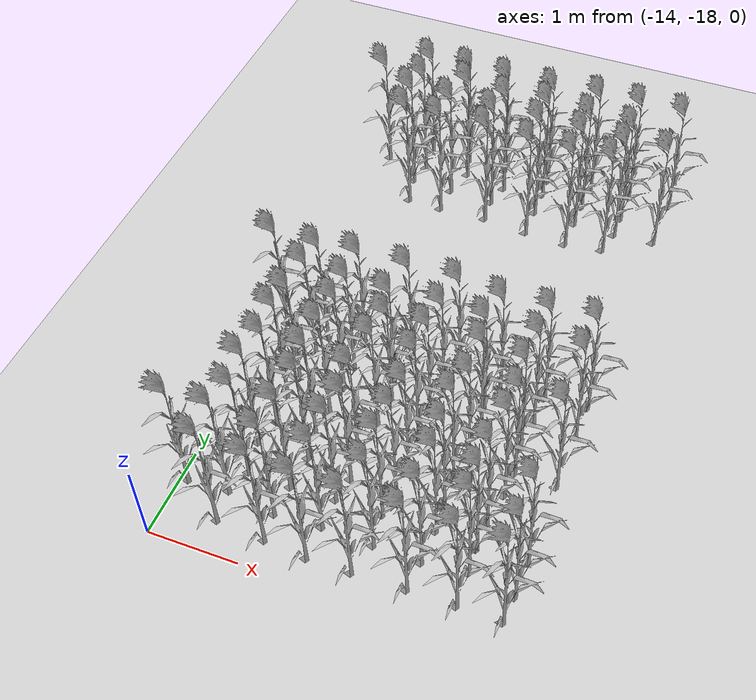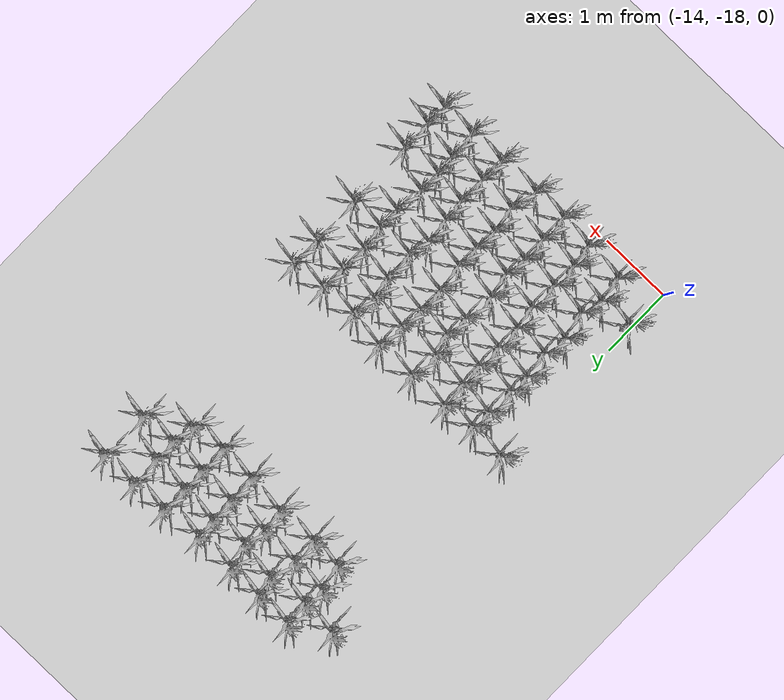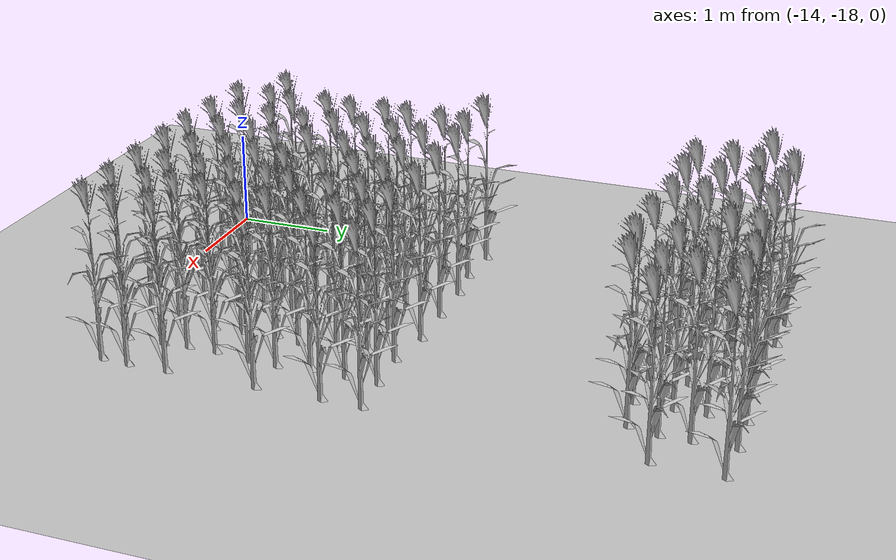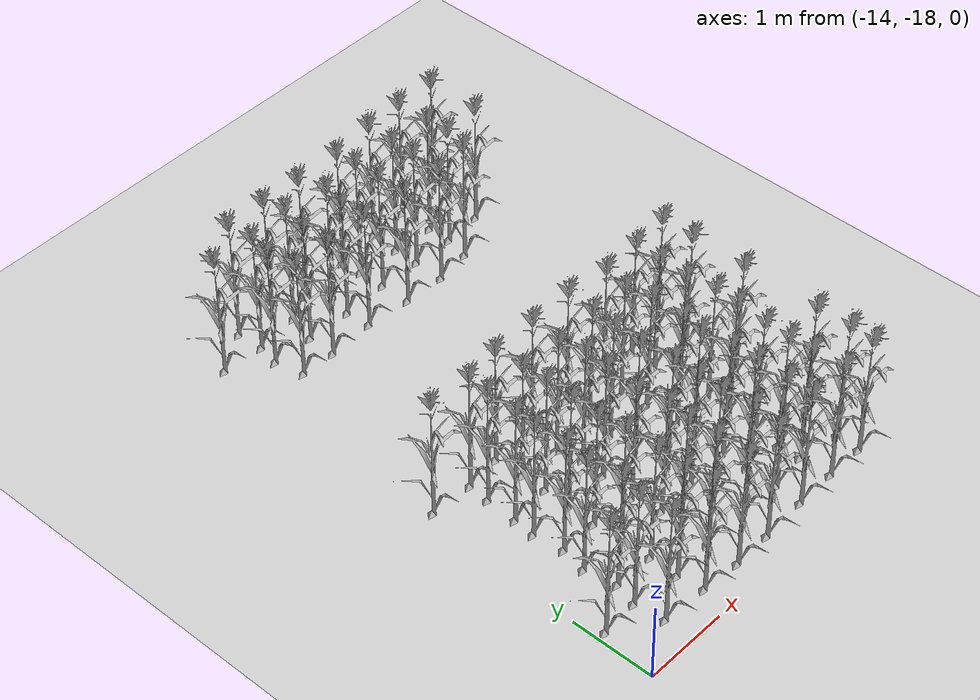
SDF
<sdf version="1.7">
 <world name="farmland_world">
  <model name="ground_plane">
   <static>1</static>
   <link name="link">
    <collision name="collision">
     <geometry><plane><normal>0 0 1</normal><size>40.0 40.0</size></plane></geometry>
     <surface><friction><ode><mu>100</mu><mu2>50</mu2></ode></friction></surface>
    </collision>
    <visual name="visual">
     <cast_shadows>0</cast_shadows>
     <geometry><plane><normal>0 0 1</normal><size>40.0 40.0</size></plane></geometry>
     <material>
      <script><uri>file://media/materials/scripts/gazebo.material</uri><name>Gazebo/Grey</name></script>
     </material>
    </visual>
   </link>
  </model>
  <model name="tree_3_1625">
   <static>1</static>
   <link name="link">
    <collision name="collision">
     <geometry><mesh><uri>model://Corn_low_poly/corn.obj</uri><scale>1 1 1</scale></mesh></geometry>
     <surface><friction><ode><mu>100</mu><mu2>50</mu2></ode></friction></surface>
    </collision>
    <visual name="visual">
     <geometry><mesh><uri>model://Corn_low_poly/corn.obj</uri><scale>1 1 1</scale></mesh></geometry>
    </visual>
   </link>
   <pose>-10.322011415505049 -16.96568933861205 0 0 0 0</pose>
  </model>
  <model name="tree_3_1626">
   <static>1</static>
   <link name="link">
    <collision name="collision">
     <geometry><mesh><uri>model://Corn_low_poly/corn.obj</uri><scale>1 1 1</scale></mesh></geometry>
     <surface><friction><ode><mu>100</mu><mu2>50</mu2></ode></friction></surface>
    </collision>
    <visual name="visual">
     <geometry><mesh><uri>model://Corn_low_poly/corn.obj</uri><scale>1 1 1</scale></mesh></geometry>
    </visual>
   </link>
   <pose>-10.842135627517585 -17.018692686762034 0 0 0 0</pose>
  </model>
  <model name="tree_3_1627">
   <static>1</static>
   <link name="link">
    <collision name="collision">
     <geometry><mesh><uri>model://Corn_low_poly/corn.obj</uri><scale>1 1 1</scale></mesh></geometry>
     <surface><friction><ode><mu>100</mu><mu2>50</mu2></ode></friction></surface>
    </collision>
    <visual name="visual">
     <geometry><mesh><uri>model://Corn_low_poly/corn.obj</uri><scale>1 1 1</scale></mesh></geometry>
    </visual>
   </link>
   <pose>-11.290646881428671 -16.969747699270048 0 0 0 0</pose>
  </model>
  <model name="tree_3_1628">
   <static>1</static>
   <link name="link">
    <collision name="collision">
     <geometry><mesh><uri>model://Corn_low_poly/corn.obj</uri><scale>1 1 1</scale></mesh></geometry>
     <surface><friction><ode><mu>100</mu><mu2>50</mu2></ode></friction></surface>
    </collision>
    <visual name="visual">
     <geometry><mesh><uri>model://Corn_low_poly/corn.obj</uri><scale>1 1 1</scale></mesh></geometry>
    </visual>
   </link>
   <pose>-11.86096429197292 -16.98734226414544 0 0 0 0</pose>
  </model>
  <model name="tree_3_1629">
   <static>1</static>
   <link name="link">
    <collision name="collision">
     <geometry><mesh><uri>model://Corn_low_poly/corn.obj</uri><scale>1 1 1</scale></mesh></geometry>
     <surface><friction><ode><mu>100</mu><mu2>50</mu2></ode></friction></surface>
    </collision>
    <visual name="visual">
     <geometry><mesh><uri>model://Corn_low_poly/corn.obj</uri><scale>1 1 1</scale></mesh></geometry>
    </visual>
   </link>
   <pose>-12.371772038073647 -16.99086698541932 0 0 0 0</pose>
  </model>
  <model name="tree_3_1630">
   <static>1</static>
   <link name="link">
    <collision name="collision">
     <geometry><mesh><uri>model://Corn_low_poly/corn.obj</uri><scale>1 1 1</scale></mesh></geometry>
     <surface><friction><ode><mu>100</mu><mu2>50</mu2></ode></friction></surface>
    </collision>
    <visual name="visual">
     <geometry><mesh><uri>model://Corn_low_poly/corn.obj</uri><scale>1 1 1</scale></mesh></geometry>
    </visual>
   </link>
   <pose>-12.870509823784332 -17.016537101468895 0 0 0 0</pose>
  </model>
  <model name="tree_3_1631">
   <static>1</static>
   <link name="link">
    <collision name="collision">
     <geometry><mesh><uri>model://Corn_low_poly/corn.obj</uri><scale>1 1 1</scale></mesh></geometry>
     <surface><friction><ode><mu>100</mu><mu2>50</mu2></ode></friction></surface>
    </collision>
    <visual name="visual">
     <geometry><mesh><uri>model://Corn_low_poly/corn.obj</uri><scale>1 1 1</scale></mesh></geometry>
    </visual>
   </link>
   <pose>-13.349775996649312 -17.005158203549183 0 0 0 0</pose>
  </model>
  <model name="tree_3_1659">
   <static>1</static>
   <link name="link">
    <collision name="collision">
     <geometry><mesh><uri>model://Corn_low_poly/corn.obj</uri><scale>1 1 1</scale></mesh></geometry>
     <surface><friction><ode><mu>100</mu><mu2>50</mu2></ode></friction></surface>
    </collision>
    <visual name="visual">
     <geometry><mesh><uri>model://Corn_low_poly/corn.obj</uri><scale>1 1 1</scale></mesh></geometry>
    </visual>
   </link>
   <pose>-10.315257468479299 -17.377820123046885 0 0 0 0</pose>
  </model>
  <model name="tree_3_1660">
   <static>1</static>
   <link name="link">
    <collision name="collision">
     <geometry><mesh><uri>model://Corn_low_poly/corn.obj</uri><scale>1 1 1</scale></mesh></geometry>
     <surface><friction><ode><mu>100</mu><mu2>50</mu2></ode></friction></surface>
    </collision>
    <visual name="visual">
     <geometry><mesh><uri>model://Corn_low_poly/corn.obj</uri><scale>1 1 1</scale></mesh></geometry>
    </visual>
   </link>
   <pose>-10.820619841156141 -17.288895621762975 0 0 0 0</pose>
  </model>
  <model name="tree_3_1661">
   <static>1</static>
   <link name="link">
    <collision name="collision">
     <geometry><mesh><uri>model://Corn_low_poly/corn.obj</uri><scale>1 1 1</scale></mesh></geometry>
     <surface><friction><ode><mu>100</mu><mu2>50</mu2></ode></friction></surface>
    </collision>
    <visual name="visual">
     <geometry><mesh><uri>model://Corn_low_poly/corn.obj</uri><scale>1 1 1</scale></mesh></geometry>
    </visual>
   </link>
   <pose>-11.293102599494727 -17.350891817546934 0 0 0 0</pose>
  </model>
  <model name="tree_3_1662">
   <static>1</static>
   <link name="link">
    <collision name="collision">
     <geometry><mesh><uri>model://Corn_low_poly/corn.obj</uri><scale>1 1 1</scale></mesh></geometry>
     <surface><friction><ode><mu>100</mu><mu2>50</mu2></ode></friction></surface>
    </collision>
    <visual name="visual">
     <geometry><mesh><uri>model://Corn_low_poly/corn.obj</uri><scale>1 1 1</scale></mesh></geometry>
    </visual>
   </link>
   <pose>-11.806453321441587 -17.34190639265092 0 0 0 0</pose>
  </model>
  <model name="tree_3_1663">
   <static>1</static>
   <link name="link">
    <collision name="collision">
     <geometry><mesh><uri>model://Corn_low_poly/corn.obj</uri><scale>1 1 1</scale></mesh></geometry>
     <surface><friction><ode><mu>100</mu><mu2>50</mu2></ode></friction></surface>
    </collision>
    <visual name="visual">
     <geometry><mesh><uri>model://Corn_low_poly/corn.obj</uri><scale>1 1 1</scale></mesh></geometry>
    </visual>
   </link>
   <pose>-12.365698626078954 -17.331936437820215 0 0 0 0</pose>
  </model>
  <model name="tree_3_1664">
   <static>1</static>
   <link name="link">
    <collision name="collision">
     <geometry><mesh><uri>model://Corn_low_poly/corn.obj</uri><scale>1 1 1</scale></mesh></geometry>
     <surface><friction><ode><mu>100</mu><mu2>50</mu2></ode></friction></surface>
    </collision>
    <visual name="visual">
     <geometry><mesh><uri>model://Corn_low_poly/corn.obj</uri><scale>1 1 1</scale></mesh></geometry>
    </visual>
   </link>
   <pose>-12.879094139196653 -17.366878622829972 0 0 0 0</pose>
  </model>
  <model name="tree_3_1665">
   <static>1</static>
   <link name="link">
    <collision name="collision">
     <geometry><mesh><uri>model://Corn_low_poly/corn.obj</uri><scale>1 1 1</scale></mesh></geometry>
     <surface><friction><ode><mu>100</mu><mu2>50</mu2></ode></friction></surface>
    </collision>
    <visual name="visual">
     <geometry><mesh><uri>model://Corn_low_poly/corn.obj</uri><scale>1 1 1</scale></mesh></geometry>
    </visual>
   </link>
   <pose>-13.432110290110971 -17.282504128516585 0 0 0 0</pose>
  </model>
  <model name="tree_3_1666">
   <static>1</static>
   <link name="link">
    <collision name="collision">
     <geometry><mesh><uri>model://Corn_low_poly/corn.obj</uri><scale>1 1 1</scale></mesh></geometry>
     <surface><friction><ode><mu>100</mu><mu2>50</mu2></ode></friction></surface>
    </collision>
    <visual name="visual">
     <geometry><mesh><uri>model://Corn_low_poly/corn.obj</uri><scale>1 1 1</scale></mesh></geometry>
    </visual>
   </link>
   <pose>-13.885906942692195 -17.312323157497772 0 0 0 0</pose>
  </model>
  <model name="tree_3_1693">
   <static>1</static>
   <link name="link">
    <collision name="collision">
     <geometry><mesh><uri>model://Corn_low_poly/corn.obj</uri><scale>1 1 1</scale></mesh></geometry>
     <surface><friction><ode><mu>100</mu><mu2>50</mu2></ode></friction></surface>
    </collision>
    <visual name="visual">
     <geometry><mesh><uri>model://Corn_low_poly/corn.obj</uri><scale>1 1 1</scale></mesh></geometry>
    </visual>
   </link>
   <pose>-10.332931129647491 -17.66784356011107 0 0 0 0</pose>
  </model>
  <model name="tree_3_1694">
   <static>1</static>
   <link name="link">
    <collision name="collision">
     <geometry><mesh><uri>model://Corn_low_poly/corn.obj</uri><scale>1 1 1</scale></mesh></geometry>
     <surface><friction><ode><mu>100</mu><mu2>50</mu2></ode></friction></surface>
    </collision>
    <visual name="visual">
     <geometry><mesh><uri>model://Corn_low_poly/corn.obj</uri><scale>1 1 1</scale></mesh></geometry>
    </visual>
   </link>
   <pose>-10.80451852717293 -17.66579896300065 0 0 0 0</pose>
  </model>
  <model name="tree_3_1695">
   <static>1</static>
   <link name="link">
    <collision name="collision">
     <geometry><mesh><uri>model://Corn_low_poly/corn.obj</uri><scale>1 1 1</scale></mesh></geometry>
     <surface><friction><ode><mu>100</mu><mu2>50</mu2></ode></friction></surface>
    </collision>
    <visual name="visual">
     <geometry><mesh><uri>model://Corn_low_poly/corn.obj</uri><scale>1 1 1</scale></mesh></geometry>
    </visual>
   </link>
   <pose>-11.313506369322727 -17.67508700233101 0 0 0 0</pose>
  </model>
  <model name="tree_3_1696">
   <static>1</static>
   <link name="link">
    <collision name="collision">
     <geometry><mesh><uri>model://Corn_low_poly/corn.obj</uri><scale>1 1 1</scale></mesh></geometry>
     <surface><friction><ode><mu>100</mu><mu2>50</mu2></ode></friction></surface>
    </collision>
    <visual name="visual">
     <geometry><mesh><uri>model://Corn_low_poly/corn.obj</uri><scale>1 1 1</scale></mesh></geometry>
    </visual>
   </link>
   <pose>-11.8869502086524 -17.698814834555076 0 0 0 0</pose>
  </model>
  <model name="tree_3_1697">
   <static>1</static>
   <link name="link">
    <collision name="collision">
     <geometry><mesh><uri>model://Corn_low_poly/corn.obj</uri><scale>1 1 1</scale></mesh></geometry>
     <surface><friction><ode><mu>100</mu><mu2>50</mu2></ode></friction></surface>
    </collision>
    <visual name="visual">
     <geometry><mesh><uri>model://Corn_low_poly/corn.obj</uri><scale>1 1 1</scale></mesh></geometry>
    </visual>
   </link>
   <pose>-12.362437709574875 -17.709618679390733 0 0 0 0</pose>
  </model>
  <model name="tree_3_1698">
   <static>1</static>
   <link name="link">
    <collision name="collision">
     <geometry><mesh><uri>model://Corn_low_poly/corn.obj</uri><scale>1 1 1</scale></mesh></geometry>
     <surface><friction><ode><mu>100</mu><mu2>50</mu2></ode></friction></surface>
    </collision>
    <visual name="visual">
     <geometry><mesh><uri>model://Corn_low_poly/corn.obj</uri><scale>1 1 1</scale></mesh></geometry>
    </visual>
   </link>
   <pose>-12.835643460431635 -17.67360087109452 0 0 0 0</pose>
  </model>
  <model name="tree_3_1699">
   <static>1</static>
   <link name="link">
    <collision name="collision">
     <geometry><mesh><uri>model://Corn_low_poly/corn.obj</uri><scale>1 1 1</scale></mesh></geometry>
     <surface><friction><ode><mu>100</mu><mu2>50</mu2></ode></friction></surface>
    </collision>
    <visual name="visual">
     <geometry><mesh><uri>model://Corn_low_poly/corn.obj</uri><scale>1 1 1</scale></mesh></geometry>
    </visual>
   </link>
   <pose>-13.381822307875591 -17.63662740836473 0 0 0 0</pose>
  </model>
  <model name="tree_3_1727">
   <static>1</static>
   <link name="link">
    <collision name="collision">
     <geometry><mesh><uri>model://Corn_low_poly/corn.obj</uri><scale>1 1 1</scale></mesh></geometry>
     <surface><friction><ode><mu>100</mu><mu2>50</mu2></ode></friction></surface>
    </collision>
    <visual name="visual">
     <geometry><mesh><uri>model://Corn_low_poly/corn.obj</uri><scale>1 1 1</scale></mesh></geometry>
    </visual>
   </link>
   <pose>-10.32863697440302 -16.042846220636665 0 0 0 0</pose>
  </model>
  <model name="tree_3_1728">
   <static>1</static>
   <link name="link">
    <collision name="collision">
     <geometry><mesh><uri>model://Corn_low_poly/corn.obj</uri><scale>1 1 1</scale></mesh></geometry>
     <surface><friction><ode><mu>100</mu><mu2>50</mu2></ode></friction></surface>
    </collision>
    <visual name="visual">
     <geometry><mesh><uri>model://Corn_low_poly/corn.obj</uri><scale>1 1 1</scale></mesh></geometry>
    </visual>
   </link>
   <pose>-10.782997873386412 -16.03975368784904 0 0 0 0</pose>
  </model>
  <model name="tree_3_1729">
   <static>1</static>
   <link name="link">
    <collision name="collision">
     <geometry><mesh><uri>model://Corn_low_poly/corn.obj</uri><scale>1 1 1</scale></mesh></geometry>
     <surface><friction><ode><mu>100</mu><mu2>50</mu2></ode></friction></surface>
    </collision>
    <visual name="visual">
     <geometry><mesh><uri>model://Corn_low_poly/corn.obj</uri><scale>1 1 1</scale></mesh></geometry>
    </visual>
   </link>
   <pose>-11.28973079513066 -16.043073047324327 0 0 0 0</pose>
  </model>
  <model name="tree_3_1730">
   <static>1</static>
   <link name="link">
    <collision name="collision">
     <geometry><mesh><uri>model://Corn_low_poly/corn.obj</uri><scale>1 1 1</scale></mesh></geometry>
     <surface><friction><ode><mu>100</mu><mu2>50</mu2></ode></friction></surface>
    </collision>
    <visual name="visual">
     <geometry><mesh><uri>model://Corn_low_poly/corn.obj</uri><scale>1 1 1</scale></mesh></geometry>
    </visual>
   </link>
   <pose>-11.884038874183815 -15.978514121935047 0 0 0 0</pose>
  </model>
  <model name="tree_3_1731">
   <static>1</static>
   <link name="link">
    <collision name="collision">
     <geometry><mesh><uri>model://Corn_low_poly/corn.obj</uri><scale>1 1 1</scale></mesh></geometry>
     <surface><friction><ode><mu>100</mu><mu2>50</mu2></ode></friction></surface>
    </collision>
    <visual name="visual">
     <geometry><mesh><uri>model://Corn_low_poly/corn.obj</uri><scale>1 1 1</scale></mesh></geometry>
    </visual>
   </link>
   <pose>-12.356034591509463 -15.951033616201336 0 0 0 0</pose>
  </model>
  <model name="tree_3_1732">
   <static>1</static>
   <link name="link">
    <collision name="collision">
     <geometry><mesh><uri>model://Corn_low_poly/corn.obj</uri><scale>1 1 1</scale></mesh></geometry>
     <surface><friction><ode><mu>100</mu><mu2>50</mu2></ode></friction></surface>
    </collision>
    <visual name="visual">
     <geometry><mesh><uri>model://Corn_low_poly/corn.obj</uri><scale>1 1 1</scale></mesh></geometry>
    </visual>
   </link>
   <pose>-12.907812554135003 -15.97689568240053 0 0 0 0</pose>
  </model>
  <model name="tree_3_1733">
   <static>1</static>
   <link name="link">
    <collision name="collision">
     <geometry><mesh><uri>model://Corn_low_poly/corn.obj</uri><scale>1 1 1</scale></mesh></geometry>
     <surface><friction><ode><mu>100</mu><mu2>50</mu2></ode></friction></surface>
    </collision>
    <visual name="visual">
     <geometry><mesh><uri>model://Corn_low_poly/corn.obj</uri><scale>1 1 1</scale></mesh></geometry>
    </visual>
   </link>
   <pose>-13.418192521420227 -15.959471024206188 0 0 0 0</pose>
  </model>
  <model name="tree_3_1762">
   <static>1</static>
   <link name="link">
    <collision name="collision">
     <geometry><mesh><uri>model://Corn_low_poly/corn.obj</uri><scale>1 1 1</scale></mesh></geometry>
     <surface><friction><ode><mu>100</mu><mu2>50</mu2></ode></friction></surface>
    </collision>
    <visual name="visual">
     <geometry><mesh><uri>model://Corn_low_poly/corn.obj</uri><scale>1 1 1</scale></mesh></geometry>
    </visual>
   </link>
   <pose>-10.792988321659148 -16.332740251845138 0 0 0 0</pose>
  </model>
  <model name="tree_3_1763">
   <static>1</static>
   <link name="link">
    <collision name="collision">
     <geometry><mesh><uri>model://Corn_low_poly/corn.obj</uri><scale>1 1 1</scale></mesh></geometry>
     <surface><friction><ode><mu>100</mu><mu2>50</mu2></ode></friction></surface>
    </collision>
    <visual name="visual">
     <geometry><mesh><uri>model://Corn_low_poly/corn.obj</uri><scale>1 1 1</scale></mesh></geometry>
    </visual>
   </link>
   <pose>-11.35822728923162 -16.315390905874644 0 0 0 0</pose>
  </model>
  <model name="tree_3_1764">
   <static>1</static>
   <link name="link">
    <collision name="collision">
     <geometry><mesh><uri>model://Corn_low_poly/corn.obj</uri><scale>1 1 1</scale></mesh></geometry>
     <surface><friction><ode><mu>100</mu><mu2>50</mu2></ode></friction></surface>
    </collision>
    <visual name="visual">
     <geometry><mesh><uri>model://Corn_low_poly/corn.obj</uri><scale>1 1 1</scale></mesh></geometry>
    </visual>
   </link>
   <pose>-11.833212871269229 -16.367110099079515 0 0 0 0</pose>
  </model>
  <model name="tree_3_1765">
   <static>1</static>
   <link name="link">
    <collision name="collision">
     <geometry><mesh><uri>model://Corn_low_poly/corn.obj</uri><scale>1 1 1</scale></mesh></geometry>
     <surface><friction><ode><mu>100</mu><mu2>50</mu2></ode></friction></surface>
    </collision>
    <visual name="visual">
     <geometry><mesh><uri>model://Corn_low_poly/corn.obj</uri><scale>1 1 1</scale></mesh></geometry>
    </visual>
   </link>
   <pose>-12.402237535194136 -16.369524232159364 0 0 0 0</pose>
  </model>
  <model name="tree_3_1766">
   <static>1</static>
   <link name="link">
    <collision name="collision">
     <geometry><mesh><uri>model://Corn_low_poly/corn.obj</uri><scale>1 1 1</scale></mesh></geometry>
     <surface><friction><ode><mu>100</mu><mu2>50</mu2></ode></friction></surface>
    </collision>
    <visual name="visual">
     <geometry><mesh><uri>model://Corn_low_poly/corn.obj</uri><scale>1 1 1</scale></mesh></geometry>
    </visual>
   </link>
   <pose>-12.911908351119354 -16.31466720654843 0 0 0 0</pose>
  </model>
  <model name="tree_3_1767">
   <static>1</static>
   <link name="link">
    <collision name="collision">
     <geometry><mesh><uri>model://Corn_low_poly/corn.obj</uri><scale>1 1 1</scale></mesh></geometry>
     <surface><friction><ode><mu>100</mu><mu2>50</mu2></ode></friction></surface>
    </collision>
    <visual name="visual">
     <geometry><mesh><uri>model://Corn_low_poly/corn.obj</uri><scale>1 1 1</scale></mesh></geometry>
    </visual>
   </link>
   <pose>-13.3687328019927 -16.320539137651252 0 0 0 0</pose>
  </model>
  <model name="tree_3_1796">
   <static>1</static>
   <link name="link">
    <collision name="collision">
     <geometry><mesh><uri>model://Corn_low_poly/corn.obj</uri><scale>1 1 1</scale></mesh></geometry>
     <surface><friction><ode><mu>100</mu><mu2>50</mu2></ode></friction></surface>
    </collision>
    <visual name="visual">
     <geometry><mesh><uri>model://Corn_low_poly/corn.obj</uri><scale>1 1 1</scale></mesh></geometry>
    </visual>
   </link>
   <pose>-10.84055962061529 -16.71542888696496 0 0 0 0</pose>
  </model>
  <model name="tree_3_1797">
   <static>1</static>
   <link name="link">
    <collision name="collision">
     <geometry><mesh><uri>model://Corn_low_poly/corn.obj</uri><scale>1 1 1</scale></mesh></geometry>
     <surface><friction><ode><mu>100</mu><mu2>50</mu2></ode></friction></surface>
    </collision>
    <visual name="visual">
     <geometry><mesh><uri>model://Corn_low_poly/corn.obj</uri><scale>1 1 1</scale></mesh></geometry>
    </visual>
   </link>
   <pose>-11.316721150950679 -16.672010882626154 0 0 0 0</pose>
  </model>
  <model name="tree_3_1798">
   <static>1</static>
   <link name="link">
    <collision name="collision">
     <geometry><mesh><uri>model://Corn_low_poly/corn.obj</uri><scale>1 1 1</scale></mesh></geometry>
     <surface><friction><ode><mu>100</mu><mu2>50</mu2></ode></friction></surface>
    </collision>
    <visual name="visual">
     <geometry><mesh><uri>model://Corn_low_poly/corn.obj</uri><scale>1 1 1</scale></mesh></geometry>
    </visual>
   </link>
   <pose>-11.842351924871057 -16.68073289494281 0 0 0 0</pose>
  </model>
  <model name="tree_3_1799">
   <static>1</static>
   <link name="link">
    <collision name="collision">
     <geometry><mesh><uri>model://Corn_low_poly/corn.obj</uri><scale>1 1 1</scale></mesh></geometry>
     <surface><friction><ode><mu>100</mu><mu2>50</mu2></ode></friction></surface>
    </collision>
    <visual name="visual">
     <geometry><mesh><uri>model://Corn_low_poly/corn.obj</uri><scale>1 1 1</scale></mesh></geometry>
    </visual>
   </link>
   <pose>-12.33335798879424 -16.7076996898423 0 0 0 0</pose>
  </model>
  <model name="tree_3_1800">
   <static>1</static>
   <link name="link">
    <collision name="collision">
     <geometry><mesh><uri>model://Corn_low_poly/corn.obj</uri><scale>1 1 1</scale></mesh></geometry>
     <surface><friction><ode><mu>100</mu><mu2>50</mu2></ode></friction></surface>
    </collision>
    <visual name="visual">
     <geometry><mesh><uri>model://Corn_low_poly/corn.obj</uri><scale>1 1 1</scale></mesh></geometry>
    </visual>
   </link>
   <pose>-12.854791704551388 -16.62601252300347 0 0 0 0</pose>
  </model>
  <model name="tree_3_1801">
   <static>1</static>
   <link name="link">
    <collision name="collision">
     <geometry><mesh><uri>model://Corn_low_poly/corn.obj</uri><scale>1 1 1</scale></mesh></geometry>
     <surface><friction><ode><mu>100</mu><mu2>50</mu2></ode></friction></surface>
    </collision>
    <visual name="visual">
     <geometry><mesh><uri>model://Corn_low_poly/corn.obj</uri><scale>1 1 1</scale></mesh></geometry>
    </visual>
   </link>
   <pose>-13.429521691935077 -16.632602321261842 0 0 0 0</pose>
  </model>
  <model name="tree_3_1829">
   <static>1</static>
   <link name="link">
    <collision name="collision">
     <geometry><mesh><uri>model://Corn_low_poly/corn.obj</uri><scale>1 1 1</scale></mesh></geometry>
     <surface><friction><ode><mu>100</mu><mu2>50</mu2></ode></friction></surface>
    </collision>
    <visual name="visual">
     <geometry><mesh><uri>model://Corn_low_poly/corn.obj</uri><scale>1 1 1</scale></mesh></geometry>
    </visual>
   </link>
   <pose>-10.325956870141068 -14.963697545939509 0 0 0 0</pose>
  </model>
  <model name="tree_3_1830">
   <static>1</static>
   <link name="link">
    <collision name="collision">
     <geometry><mesh><uri>model://Corn_low_poly/corn.obj</uri><scale>1 1 1</scale></mesh></geometry>
     <surface><friction><ode><mu>100</mu><mu2>50</mu2></ode></friction></surface>
    </collision>
    <visual name="visual">
     <geometry><mesh><uri>model://Corn_low_poly/corn.obj</uri><scale>1 1 1</scale></mesh></geometry>
    </visual>
   </link>
   <pose>-10.799580452765204 -15.004924641645731 0 0 0 0</pose>
  </model>
  <model name="tree_3_1831">
   <static>1</static>
   <link name="link">
    <collision name="collision">
     <geometry><mesh><uri>model://Corn_low_poly/corn.obj</uri><scale>1 1 1</scale></mesh></geometry>
     <surface><friction><ode><mu>100</mu><mu2>50</mu2></ode></friction></surface>
    </collision>
    <visual name="visual">
     <geometry><mesh><uri>model://Corn_low_poly/corn.obj</uri><scale>1 1 1</scale></mesh></geometry>
    </visual>
   </link>
   <pose>-11.298625363583938 -15.036410345228616 0 0 0 0</pose>
  </model>
  <model name="tree_3_1832">
   <static>1</static>
   <link name="link">
    <collision name="collision">
     <geometry><mesh><uri>model://Corn_low_poly/corn.obj</uri><scale>1 1 1</scale></mesh></geometry>
     <surface><friction><ode><mu>100</mu><mu2>50</mu2></ode></friction></surface>
    </collision>
    <visual name="visual">
     <geometry><mesh><uri>model://Corn_low_poly/corn.obj</uri><scale>1 1 1</scale></mesh></geometry>
    </visual>
   </link>
   <pose>-11.804007953235711 -14.968468105080088 0 0 0 0</pose>
  </model>
  <model name="tree_3_1833">
   <static>1</static>
   <link name="link">
    <collision name="collision">
     <geometry><mesh><uri>model://Corn_low_poly/corn.obj</uri><scale>1 1 1</scale></mesh></geometry>
     <surface><friction><ode><mu>100</mu><mu2>50</mu2></ode></friction></surface>
    </collision>
    <visual name="visual">
     <geometry><mesh><uri>model://Corn_low_poly/corn.obj</uri><scale>1 1 1</scale></mesh></geometry>
    </visual>
   </link>
   <pose>-12.358794764056093 -14.982572644585762 0 0 0 0</pose>
  </model>
  <model name="tree_3_1834">
   <static>1</static>
   <link name="link">
    <collision name="collision">
     <geometry><mesh><uri>model://Corn_low_poly/corn.obj</uri><scale>1 1 1</scale></mesh></geometry>
     <surface><friction><ode><mu>100</mu><mu2>50</mu2></ode></friction></surface>
    </collision>
    <visual name="visual">
     <geometry><mesh><uri>model://Corn_low_poly/corn.obj</uri><scale>1 1 1</scale></mesh></geometry>
    </visual>
   </link>
   <pose>-12.918453552928248 -14.992186243465856 0 0 0 0</pose>
  </model>
  <model name="tree_3_1835">
   <static>1</static>
   <link name="link">
    <collision name="collision">
     <geometry><mesh><uri>model://Corn_low_poly/corn.obj</uri><scale>1 1 1</scale></mesh></geometry>
     <surface><friction><ode><mu>100</mu><mu2>50</mu2></ode></friction></surface>
    </collision>
    <visual name="visual">
     <geometry><mesh><uri>model://Corn_low_poly/corn.obj</uri><scale>1 1 1</scale></mesh></geometry>
    </visual>
   </link>
   <pose>-13.354050018744308 -15.047612268685842 0 0 0 0</pose>
  </model>
  <model name="tree_3_1836">
   <static>1</static>
   <link name="link">
    <collision name="collision">
     <geometry><mesh><uri>model://Corn_low_poly/corn.obj</uri><scale>1 1 1</scale></mesh></geometry>
     <surface><friction><ode><mu>100</mu><mu2>50</mu2></ode></friction></surface>
    </collision>
    <visual name="visual">
     <geometry><mesh><uri>model://Corn_low_poly/corn.obj</uri><scale>1 1 1</scale></mesh></geometry>
    </visual>
   </link>
   <pose>-13.874052679581428 -15.026704508887436 0 0 0 0</pose>
  </model>
  <model name="tree_3_1863">
   <static>1</static>
   <link name="link">
    <collision name="collision">
     <geometry><mesh><uri>model://Corn_low_poly/corn.obj</uri><scale>1 1 1</scale></mesh></geometry>
     <surface><friction><ode><mu>100</mu><mu2>50</mu2></ode></friction></surface>
    </collision>
    <visual name="visual">
     <geometry><mesh><uri>model://Corn_low_poly/corn.obj</uri><scale>1 1 1</scale></mesh></geometry>
    </visual>
   </link>
   <pose>-10.335260495835923 -15.371274175216495 0 0 0 0</pose>
  </model>
  <model name="tree_3_1864">
   <static>1</static>
   <link name="link">
    <collision name="collision">
     <geometry><mesh><uri>model://Corn_low_poly/corn.obj</uri><scale>1 1 1</scale></mesh></geometry>
     <surface><friction><ode><mu>100</mu><mu2>50</mu2></ode></friction></surface>
    </collision>
    <visual name="visual">
     <geometry><mesh><uri>model://Corn_low_poly/corn.obj</uri><scale>1 1 1</scale></mesh></geometry>
    </visual>
   </link>
   <pose>-10.81183049209513 -15.337839178509233 0 0 0 0</pose>
  </model>
  <model name="tree_3_1865">
   <static>1</static>
   <link name="link">
    <collision name="collision">
     <geometry><mesh><uri>model://Corn_low_poly/corn.obj</uri><scale>1 1 1</scale></mesh></geometry>
     <surface><friction><ode><mu>100</mu><mu2>50</mu2></ode></friction></surface>
    </collision>
    <visual name="visual">
     <geometry><mesh><uri>model://Corn_low_poly/corn.obj</uri><scale>1 1 1</scale></mesh></geometry>
    </visual>
   </link>
   <pose>-11.369724427076514 -15.34573560882228 0 0 0 0</pose>
  </model>
  <model name="tree_3_1866">
   <static>1</static>
   <link name="link">
    <collision name="collision">
     <geometry><mesh><uri>model://Corn_low_poly/corn.obj</uri><scale>1 1 1</scale></mesh></geometry>
     <surface><friction><ode><mu>100</mu><mu2>50</mu2></ode></friction></surface>
    </collision>
    <visual name="visual">
     <geometry><mesh><uri>model://Corn_low_poly/corn.obj</uri><scale>1 1 1</scale></mesh></geometry>
    </visual>
   </link>
   <pose>-11.850358547913055 -15.329853753375607 0 0 0 0</pose>
  </model>
  <model name="tree_3_1867">
   <static>1</static>
   <link name="link">
    <collision name="collision">
     <geometry><mesh><uri>model://Corn_low_poly/corn.obj</uri><scale>1 1 1</scale></mesh></geometry>
     <surface><friction><ode><mu>100</mu><mu2>50</mu2></ode></friction></surface>
    </collision>
    <visual name="visual">
     <geometry><mesh><uri>model://Corn_low_poly/corn.obj</uri><scale>1 1 1</scale></mesh></geometry>
    </visual>
   </link>
   <pose>-12.40959752308389 -15.370768429178847 0 0 0 0</pose>
  </model>
  <model name="tree_3_1868">
   <static>1</static>
   <link name="link">
    <collision name="collision">
     <geometry><mesh><uri>model://Corn_low_poly/corn.obj</uri><scale>1 1 1</scale></mesh></geometry>
     <surface><friction><ode><mu>100</mu><mu2>50</mu2></ode></friction></surface>
    </collision>
    <visual name="visual">
     <geometry><mesh><uri>model://Corn_low_poly/corn.obj</uri><scale>1 1 1</scale></mesh></geometry>
    </visual>
   </link>
   <pose>-12.899627513609621 -15.341448242776348 0 0 0 0</pose>
  </model>
  <model name="tree_3_1869">
   <static>1</static>
   <link name="link">
    <collision name="collision">
     <geometry><mesh><uri>model://Corn_low_poly/corn.obj</uri><scale>1 1 1</scale></mesh></geometry>
     <surface><friction><ode><mu>100</mu><mu2>50</mu2></ode></friction></surface>
    </collision>
    <visual name="visual">
     <geometry><mesh><uri>model://Corn_low_poly/corn.obj</uri><scale>1 1 1</scale></mesh></geometry>
    </visual>
   </link>
   <pose>-13.379293864638475 -15.311350038427666 0 0 0 0</pose>
  </model>
  <model name="tree_3_1898">
   <static>1</static>
   <link name="link">
    <collision name="collision">
     <geometry><mesh><uri>model://Corn_low_poly/corn.obj</uri><scale>1 1 1</scale></mesh></geometry>
     <surface><friction><ode><mu>100</mu><mu2>50</mu2></ode></friction></surface>
    </collision>
    <visual name="visual">
     <geometry><mesh><uri>model://Corn_low_poly/corn.obj</uri><scale>1 1 1</scale></mesh></geometry>
    </visual>
   </link>
   <pose>-10.83388801836684 -15.700190845579996 0 0 0 0</pose>
  </model>
  <model name="tree_3_1899">
   <static>1</static>
   <link name="link">
    <collision name="collision">
     <geometry><mesh><uri>model://Corn_low_poly/corn.obj</uri><scale>1 1 1</scale></mesh></geometry>
     <surface><friction><ode><mu>100</mu><mu2>50</mu2></ode></friction></surface>
    </collision>
    <visual name="visual">
     <geometry><mesh><uri>model://Corn_low_poly/corn.obj</uri><scale>1 1 1</scale></mesh></geometry>
    </visual>
   </link>
   <pose>-11.299857595854101 -15.638266587448696 0 0 0 0</pose>
  </model>
  <model name="tree_3_1900">
   <static>1</static>
   <link name="link">
    <collision name="collision">
     <geometry><mesh><uri>model://Corn_low_poly/corn.obj</uri><scale>1 1 1</scale></mesh></geometry>
     <surface><friction><ode><mu>100</mu><mu2>50</mu2></ode></friction></surface>
    </collision>
    <visual name="visual">
     <geometry><mesh><uri>model://Corn_low_poly/corn.obj</uri><scale>1 1 1</scale></mesh></geometry>
    </visual>
   </link>
   <pose>-11.88392539490168 -15.640412455439485 0 0 0 0</pose>
  </model>
  <model name="tree_3_1901">
   <static>1</static>
   <link name="link">
    <collision name="collision">
     <geometry><mesh><uri>model://Corn_low_poly/corn.obj</uri><scale>1 1 1</scale></mesh></geometry>
     <surface><friction><ode><mu>100</mu><mu2>50</mu2></ode></friction></surface>
    </collision>
    <visual name="visual">
     <geometry><mesh><uri>model://Corn_low_poly/corn.obj</uri><scale>1 1 1</scale></mesh></geometry>
    </visual>
   </link>
   <pose>-12.320085222918744 -15.649443220057075 0 0 0 0</pose>
  </model>
  <model name="tree_3_1902">
   <static>1</static>
   <link name="link">
    <collision name="collision">
     <geometry><mesh><uri>model://Corn_low_poly/corn.obj</uri><scale>1 1 1</scale></mesh></geometry>
     <surface><friction><ode><mu>100</mu><mu2>50</mu2></ode></friction></surface>
    </collision>
    <visual name="visual">
     <geometry><mesh><uri>model://Corn_low_poly/corn.obj</uri><scale>1 1 1</scale></mesh></geometry>
    </visual>
   </link>
   <pose>-12.88976042153193 -15.645953738441447 0 0 0 0</pose>
  </model>
  <model name="tree_3_1903">
   <static>1</static>
   <link name="link">
    <collision name="collision">
     <geometry><mesh><uri>model://Corn_low_poly/corn.obj</uri><scale>1 1 1</scale></mesh></geometry>
     <surface><friction><ode><mu>100</mu><mu2>50</mu2></ode></friction></surface>
    </collision>
    <visual name="visual">
     <geometry><mesh><uri>model://Corn_low_poly/corn.obj</uri><scale>1 1 1</scale></mesh></geometry>
    </visual>
   </link>
   <pose>-13.397166776729538 -15.697775958219259 0 0 0 0</pose>
  </model>
  <model name="tree_3_1932">
   <static>1</static>
   <link name="link">
    <collision name="collision">
     <geometry><mesh><uri>model://Corn_low_poly/corn.obj</uri><scale>1 1 1</scale></mesh></geometry>
     <surface><friction><ode><mu>100</mu><mu2>50</mu2></ode></friction></surface>
    </collision>
    <visual name="visual">
     <geometry><mesh><uri>model://Corn_low_poly/corn.obj</uri><scale>1 1 1</scale></mesh></geometry>
    </visual>
   </link>
   <pose>-10.793045027378868 -12.035966179015988 0 0 0 0</pose>
  </model>
  <model name="tree_3_1933">
   <static>1</static>
   <link name="link">
    <collision name="collision">
     <geometry><mesh><uri>model://Corn_low_poly/corn.obj</uri><scale>1 1 1</scale></mesh></geometry>
     <surface><friction><ode><mu>100</mu><mu2>50</mu2></ode></friction></surface>
    </collision>
    <visual name="visual">
     <geometry><mesh><uri>model://Corn_low_poly/corn.obj</uri><scale>1 1 1</scale></mesh></geometry>
    </visual>
   </link>
   <pose>-11.302363655578057 -12.008259073296438 0 0 0 0</pose>
  </model>
  <model name="tree_3_1934">
   <static>1</static>
   <link name="link">
    <collision name="collision">
     <geometry><mesh><uri>model://Corn_low_poly/corn.obj</uri><scale>1 1 1</scale></mesh></geometry>
     <surface><friction><ode><mu>100</mu><mu2>50</mu2></ode></friction></surface>
    </collision>
    <visual name="visual">
     <geometry><mesh><uri>model://Corn_low_poly/corn.obj</uri><scale>1 1 1</scale></mesh></geometry>
    </visual>
   </link>
   <pose>-11.82443995739534 -11.972016044158272 0 0 0 0</pose>
  </model>
  <model name="tree_3_1935">
   <static>1</static>
   <link name="link">
    <collision name="collision">
     <geometry><mesh><uri>model://Corn_low_poly/corn.obj</uri><scale>1 1 1</scale></mesh></geometry>
     <surface><friction><ode><mu>100</mu><mu2>50</mu2></ode></friction></surface>
    </collision>
    <visual name="visual">
     <geometry><mesh><uri>model://Corn_low_poly/corn.obj</uri><scale>1 1 1</scale></mesh></geometry>
    </visual>
   </link>
   <pose>-12.316666646930074 -12.03389882151688 0 0 0 0</pose>
  </model>
  <model name="tree_3_1936">
   <static>1</static>
   <link name="link">
    <collision name="collision">
     <geometry><mesh><uri>model://Corn_low_poly/corn.obj</uri><scale>1 1 1</scale></mesh></geometry>
     <surface><friction><ode><mu>100</mu><mu2>50</mu2></ode></friction></surface>
    </collision>
    <visual name="visual">
     <geometry><mesh><uri>model://Corn_low_poly/corn.obj</uri><scale>1 1 1</scale></mesh></geometry>
    </visual>
   </link>
   <pose>-12.83299192253486 -11.951703060854896 0 0 0 0</pose>
  </model>
  <model name="tree_3_1937">
   <static>1</static>
   <link name="link">
    <collision name="collision">
     <geometry><mesh><uri>model://Corn_low_poly/corn.obj</uri><scale>1 1 1</scale></mesh></geometry>
     <surface><friction><ode><mu>100</mu><mu2>50</mu2></ode></friction></surface>
    </collision>
    <visual name="visual">
     <geometry><mesh><uri>model://Corn_low_poly/corn.obj</uri><scale>1 1 1</scale></mesh></geometry>
    </visual>
   </link>
   <pose>-13.373906970196897 -12.02243955389785 0 0 0 0</pose>
  </model>
  <model name="tree_3_1938">
   <static>1</static>
   <link name="link">
    <collision name="collision">
     <geometry><mesh><uri>model://Corn_low_poly/corn.obj</uri><scale>1 1 1</scale></mesh></geometry>
     <surface><friction><ode><mu>100</mu><mu2>50</mu2></ode></friction></surface>
    </collision>
    <visual name="visual">
     <geometry><mesh><uri>model://Corn_low_poly/corn.obj</uri><scale>1 1 1</scale></mesh></geometry>
    </visual>
   </link>
   <pose>-13.879129744963855 -11.991840894919122 0 0 0 0</pose>
  </model>
  <model name="tree_3_1965">
   <static>1</static>
   <link name="link">
    <collision name="collision">
     <geometry><mesh><uri>model://Corn_low_poly/corn.obj</uri><scale>1 1 1</scale></mesh></geometry>
     <surface><friction><ode><mu>100</mu><mu2>50</mu2></ode></friction></surface>
    </collision>
    <visual name="visual">
     <geometry><mesh><uri>model://Corn_low_poly/corn.obj</uri><scale>1 1 1</scale></mesh></geometry>
    </visual>
   </link>
   <pose>-10.311635458059659 -12.292099870794315 0 0 0 0</pose>
  </model>
  <model name="tree_3_1966">
   <static>1</static>
   <link name="link">
    <collision name="collision">
     <geometry><mesh><uri>model://Corn_low_poly/corn.obj</uri><scale>1 1 1</scale></mesh></geometry>
     <surface><friction><ode><mu>100</mu><mu2>50</mu2></ode></friction></surface>
    </collision>
    <visual name="visual">
     <geometry><mesh><uri>model://Corn_low_poly/corn.obj</uri><scale>1 1 1</scale></mesh></geometry>
    </visual>
   </link>
   <pose>-10.78882782487242 -12.330575253554974 0 0 0 0</pose>
  </model>
  <model name="tree_3_1967">
   <static>1</static>
   <link name="link">
    <collision name="collision">
     <geometry><mesh><uri>model://Corn_low_poly/corn.obj</uri><scale>1 1 1</scale></mesh></geometry>
     <surface><friction><ode><mu>100</mu><mu2>50</mu2></ode></friction></surface>
    </collision>
    <visual name="visual">
     <geometry><mesh><uri>model://Corn_low_poly/corn.obj</uri><scale>1 1 1</scale></mesh></geometry>
    </visual>
   </link>
   <pose>-11.29796252819502 -12.316516751388676 0 0 0 0</pose>
  </model>
  <model name="tree_3_1968">
   <static>1</static>
   <link name="link">
    <collision name="collision">
     <geometry><mesh><uri>model://Corn_low_poly/corn.obj</uri><scale>1 1 1</scale></mesh></geometry>
     <surface><friction><ode><mu>100</mu><mu2>50</mu2></ode></friction></surface>
    </collision>
    <visual name="visual">
     <geometry><mesh><uri>model://Corn_low_poly/corn.obj</uri><scale>1 1 1</scale></mesh></geometry>
    </visual>
   </link>
   <pose>-11.814495922154498 -12.302629067120447 0 0 0 0</pose>
  </model>
  <model name="tree_3_1969">
   <static>1</static>
   <link name="link">
    <collision name="collision">
     <geometry><mesh><uri>model://Corn_low_poly/corn.obj</uri><scale>1 1 1</scale></mesh></geometry>
     <surface><friction><ode><mu>100</mu><mu2>50</mu2></ode></friction></surface>
    </collision>
    <visual name="visual">
     <geometry><mesh><uri>model://Corn_low_poly/corn.obj</uri><scale>1 1 1</scale></mesh></geometry>
    </visual>
   </link>
   <pose>-12.381974406814233 -12.322190762322423 0 0 0 0</pose>
  </model>
  <model name="tree_3_1970">
   <static>1</static>
   <link name="link">
    <collision name="collision">
     <geometry><mesh><uri>model://Corn_low_poly/corn.obj</uri><scale>1 1 1</scale></mesh></geometry>
     <surface><friction><ode><mu>100</mu><mu2>50</mu2></ode></friction></surface>
    </collision>
    <visual name="visual">
     <geometry><mesh><uri>model://Corn_low_poly/corn.obj</uri><scale>1 1 1</scale></mesh></geometry>
    </visual>
   </link>
   <pose>-12.92186786991689 -12.305812318748467 0 0 0 0</pose>
  </model>
  <model name="tree_3_1971">
   <static>1</static>
   <link name="link">
    <collision name="collision">
     <geometry><mesh><uri>model://Corn_low_poly/corn.obj</uri><scale>1 1 1</scale></mesh></geometry>
     <surface><friction><ode><mu>100</mu><mu2>50</mu2></ode></friction></surface>
    </collision>
    <visual name="visual">
     <geometry><mesh><uri>model://Corn_low_poly/corn.obj</uri><scale>1 1 1</scale></mesh></geometry>
    </visual>
   </link>
   <pose>-13.426180720454104 -12.289483792102729 0 0 0 0</pose>
  </model>
  <model name="tree_3_2000">
   <static>1</static>
   <link name="link">
    <collision name="collision">
     <geometry><mesh><uri>model://Corn_low_poly/corn.obj</uri><scale>1 1 1</scale></mesh></geometry>
     <surface><friction><ode><mu>100</mu><mu2>50</mu2></ode></friction></surface>
    </collision>
    <visual name="visual">
     <geometry><mesh><uri>model://Corn_low_poly/corn.obj</uri><scale>1 1 1</scale></mesh></geometry>
    </visual>
   </link>
   <pose>-10.852549822173456 -12.62898874820173 0 0 0 0</pose>
  </model>
  <model name="tree_3_2001">
   <static>1</static>
   <link name="link">
    <collision name="collision">
     <geometry><mesh><uri>model://Corn_low_poly/corn.obj</uri><scale>1 1 1</scale></mesh></geometry>
     <surface><friction><ode><mu>100</mu><mu2>50</mu2></ode></friction></surface>
    </collision>
    <visual name="visual">
     <geometry><mesh><uri>model://Corn_low_poly/corn.obj</uri><scale>1 1 1</scale></mesh></geometry>
    </visual>
   </link>
   <pose>-11.30090484695499 -12.694865688271747 0 0 0 0</pose>
  </model>
  <model name="tree_3_2002">
   <static>1</static>
   <link name="link">
    <collision name="collision">
     <geometry><mesh><uri>model://Corn_low_poly/corn.obj</uri><scale>1 1 1</scale></mesh></geometry>
     <surface><friction><ode><mu>100</mu><mu2>50</mu2></ode></friction></surface>
    </collision>
    <visual name="visual">
     <geometry><mesh><uri>model://Corn_low_poly/corn.obj</uri><scale>1 1 1</scale></mesh></geometry>
    </visual>
   </link>
   <pose>-11.806026744783484 -12.675103647862041 0 0 0 0</pose>
  </model>
  <model name="tree_3_2003">
   <static>1</static>
   <link name="link">
    <collision name="collision">
     <geometry><mesh><uri>model://Corn_low_poly/corn.obj</uri><scale>1 1 1</scale></mesh></geometry>
     <surface><friction><ode><mu>100</mu><mu2>50</mu2></ode></friction></surface>
    </collision>
    <visual name="visual">
     <geometry><mesh><uri>model://Corn_low_poly/corn.obj</uri><scale>1 1 1</scale></mesh></geometry>
    </visual>
   </link>
   <pose>-12.3532299206501 -12.625917384217464 0 0 0 0</pose>
  </model>
  <model name="tree_3_2004">
   <static>1</static>
   <link name="link">
    <collision name="collision">
     <geometry><mesh><uri>model://Corn_low_poly/corn.obj</uri><scale>1 1 1</scale></mesh></geometry>
     <surface><friction><ode><mu>100</mu><mu2>50</mu2></ode></friction></surface>
    </collision>
    <visual name="visual">
     <geometry><mesh><uri>model://Corn_low_poly/corn.obj</uri><scale>1 1 1</scale></mesh></geometry>
    </visual>
   </link>
   <pose>-12.926992681775937 -12.65329609940992 0 0 0 0</pose>
  </model>
  <model name="tree_3_2005">
   <static>1</static>
   <link name="link">
    <collision name="collision">
     <geometry><mesh><uri>model://Corn_low_poly/corn.obj</uri><scale>1 1 1</scale></mesh></geometry>
     <surface><friction><ode><mu>100</mu><mu2>50</mu2></ode></friction></surface>
    </collision>
    <visual name="visual">
     <geometry><mesh><uri>model://Corn_low_poly/corn.obj</uri><scale>1 1 1</scale></mesh></geometry>
    </visual>
   </link>
   <pose>-13.347117357304509 -12.638208186323933 0 0 0 0</pose>
  </model>
  <model name="tree_3_2101">
   <static>1</static>
   <link name="link">
    <collision name="collision">
     <geometry><mesh><uri>model://Corn_low_poly/corn.obj</uri><scale>1 1 1</scale></mesh></geometry>
     <surface><friction><ode><mu>100</mu><mu2>50</mu2></ode></friction></surface>
    </collision>
    <visual name="visual">
     <geometry><mesh><uri>model://Corn_low_poly/corn.obj</uri><scale>1 1 1</scale></mesh></geometry>
    </visual>
   </link>
   <pose>-10.29860926988623 -11.622514109235114 0 0 0 0</pose>
  </model>
  <model name="tree_3_2102">
   <static>1</static>
   <link name="link">
    <collision name="collision">
     <geometry><mesh><uri>model://Corn_low_poly/corn.obj</uri><scale>1 1 1</scale></mesh></geometry>
     <surface><friction><ode><mu>100</mu><mu2>50</mu2></ode></friction></surface>
    </collision>
    <visual name="visual">
     <geometry><mesh><uri>model://Corn_low_poly/corn.obj</uri><scale>1 1 1</scale></mesh></geometry>
    </visual>
   </link>
   <pose>-10.804054213405657 -11.623775335031386 0 0 0 0</pose>
  </model>
  <model name="tree_3_2103">
   <static>1</static>
   <link name="link">
    <collision name="collision">
     <geometry><mesh><uri>model://Corn_low_poly/corn.obj</uri><scale>1 1 1</scale></mesh></geometry>
     <surface><friction><ode><mu>100</mu><mu2>50</mu2></ode></friction></surface>
    </collision>
    <visual name="visual">
     <geometry><mesh><uri>model://Corn_low_poly/corn.obj</uri><scale>1 1 1</scale></mesh></geometry>
    </visual>
   </link>
   <pose>-11.293231978343687 -11.647729514538808 0 0 0 0</pose>
  </model>
  <model name="tree_3_2104">
   <static>1</static>
   <link name="link">
    <collision name="collision">
     <geometry><mesh><uri>model://Corn_low_poly/corn.obj</uri><scale>1 1 1</scale></mesh></geometry>
     <surface><friction><ode><mu>100</mu><mu2>50</mu2></ode></friction></surface>
    </collision>
    <visual name="visual">
     <geometry><mesh><uri>model://Corn_low_poly/corn.obj</uri><scale>1 1 1</scale></mesh></geometry>
    </visual>
   </link>
   <pose>-11.842710558298094 -11.711958994907016 0 0 0 0</pose>
  </model>
  <model name="tree_3_2105">
   <static>1</static>
   <link name="link">
    <collision name="collision">
     <geometry><mesh><uri>model://Corn_low_poly/corn.obj</uri><scale>1 1 1</scale></mesh></geometry>
     <surface><friction><ode><mu>100</mu><mu2>50</mu2></ode></friction></surface>
    </collision>
    <visual name="visual">
     <geometry><mesh><uri>model://Corn_low_poly/corn.obj</uri><scale>1 1 1</scale></mesh></geometry>
    </visual>
   </link>
   <pose>-12.412618469585954 -11.712129860788181 0 0 0 0</pose>
  </model>
  <model name="tree_3_2106">
   <static>1</static>
   <link name="link">
    <collision name="collision">
     <geometry><mesh><uri>model://Corn_low_poly/corn.obj</uri><scale>1 1 1</scale></mesh></geometry>
     <surface><friction><ode><mu>100</mu><mu2>50</mu2></ode></friction></surface>
    </collision>
    <visual name="visual">
     <geometry><mesh><uri>model://Corn_low_poly/corn.obj</uri><scale>1 1 1</scale></mesh></geometry>
    </visual>
   </link>
   <pose>-12.9060042294455 -11.698382849064098 0 0 0 0</pose>
  </model>
  <model name="tree_3_2107">
   <static>1</static>
   <link name="link">
    <collision name="collision">
     <geometry><mesh><uri>model://Corn_low_poly/corn.obj</uri><scale>1 1 1</scale></mesh></geometry>
     <surface><friction><ode><mu>100</mu><mu2>50</mu2></ode></friction></surface>
    </collision>
    <visual name="visual">
     <geometry><mesh><uri>model://Corn_low_poly/corn.obj</uri><scale>1 1 1</scale></mesh></geometry>
    </visual>
   </link>
   <pose>-13.39642280501611 -11.694712717531678 0 0 0 0</pose>
  </model>
 </world>
</sdf>
